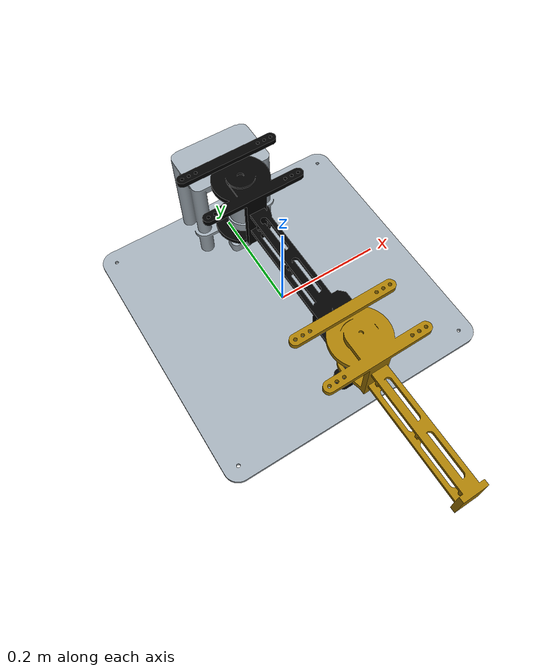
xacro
<?xml version="1.0" ?>
<robot name="SDOF" xmlns:xacro="http://ros.org/wiki/xacro">
 <xacro:include filename="$(find robot2_description)/urdf/robot2_2.xacro" />
	 <link name="world">
	 </link>

	 <joint name="bottom_joint" type="fixed">
	     <origin xyz="0 0 0" rpy="0 0 0" />
	    <parent link="world"/>
	    <child link="base"/>
	  </joint>

   	<gazebo reference="base_link">
    		<material>Gazebo/Black</material>
  	</gazebo>

	<link name="base">
	<visual>
	<origin xyz="0 0 0" rpy="0 -0 0" />
	<geometry>
	<mesh filename="package://robot2_description/meshes/base_visual.stl"/>
	</geometry>
	<material name="base_material">
	<color rgba="0.62352941176470588758 0.66666666666666662966 0.70196078431372543882 1.0"/>
	</material>
	</visual>
	<collision>
	<origin xyz="0 0 0" rpy="0 -0 0" />
	<geometry>
	<mesh filename="package://robot2_description/meshes/base_collision.stl"/>
	</geometry>
	</collision>
	<inertial>
	<origin xyz="-8.5021145016461741051e-05 0.058778785998037819116 0.039600060500422355758" rpy="0 0 0"/>
	<mass value="7.2066381775698191703" />
	<inertia ixx="0.1848510767894367135" ixy="4.5691022906607363266e-05"  ixz="-4.0746026562791975412e-06" iyy="0.1343932608549686103" iyz="-0.031252351034649690498" izz="0.26718670184450998839" />
	</inertial>
	</link>

	<link name="arm_link1">
	<visual>
	<origin xyz="0 0 0" rpy="0 -0 0" />
	<geometry>
	<mesh filename="package://robot2_description/meshes/arm_link1_visual.stl"/>
	</geometry>
	<material name="arm_link1_material">
	<color rgba="0 0 0 1.0"/>
	</material>
	</visual>
	<collision>
	<origin xyz="0 0 0" rpy="0 -0 0" />
	<geometry>
	<mesh filename="package://robot2_description/meshes/arm_link1_collision.stl"/>
	</geometry>
	</collision>
	<inertial>
	<origin xyz="-0.00045109081390297465879 0.156201263484157582 -0.061677112247344179075" rpy="0 0 0"/>
	<mass value="1.4999999999999995559" />
	<inertia ixx="0.038537421102185387412" ixy="0.00012646598414354587531"  ixz="5.8850036257577947895e-05" iyy="0.0041886319586759658204" iyz="-0.0051423976908458804425" izz="0.036047505575906427233" />
	</inertial>
	</link>

	<link name="arm_link2">
	<visual>
	<origin xyz="0 0 0" rpy="0 -0 0" />
	<geometry>//mrm_description/meshes/
	<mesh filename="package://robot2_description/meshes/arm_link2_visual.stl"/>
	</geometry>
	<material name="arm_link2_material">
	<color rgba="0.65098039215686276382 0.48627450980392161739 0.019607843137254901689 1.0"/>
	</material>
	</visual>
	<collision>
	<origin xyz="0 0 0" rpy="0 -0 0" />
	<geometry>
	<mesh filename="package://robot2_description/meshes/arm_link2_collision.stl"/>
	</geometry>
	</collision>
	<inertial>
	<origin xyz="-1.4364225730974966689e-16 0.058911397470120141495 -0.062719477942803858461" rpy="0 0 0"/>
	<mass value="0.87300000000000099742" />
	<inertia ixx="0.0089993884421236645943" ixy="6.8925176177649059502e-19"  ixz="6.7665144158966557959e-19" iyy="0.0016902567305589091644" iyz="-0.0011284435031555686661" izz="0.0086581277243874769228" />
	</inertial>
	</link>

	<xacro:joint_revolute_z joint_name="arm_joint1" parent_link ="base"
			child_link ="arm_link1">
	 	<origin xyz="0 0.13334999999999996856 0.089400000000000007239" rpy="3.141592653589793116 -0 0.0093385757735447421507"/>
	</xacro:joint_revolute_z>

	<xacro:joint_revolute_z joint_name="arm_joint2" parent_link ="arm_link1"
			child_link ="arm_link2">
	 	<origin xyz="2.5587171270657904643e-17 0.34300000000000002709 -0.014600000000000001865" rpy="0 -0 -8.0823828788377960904e-19"/>
	</xacro:joint_revolute_z>

	<xacro:transmission joint_name="arm_joint1">
		</xacro:transmission>
	<xacro:transmission joint_name="arm_joint2">
		</xacro:transmission>
	<gazebo>
    <plugin name="gazebo_ros_control" filename="libgazebo_ros_control.so">
          <robotNamespace>/SDOF</robotNamespace>
     <robotSimType>gazebo_ros_control/DefaultRobotHWSim</robotSimType>
    </plugin>
    </gazebo>

</robot>

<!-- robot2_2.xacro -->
<robot xmlns:xacro="http://www.ros.org/wiki/xacro" >

	 <!-- Include materials -->

     <xacro:property name="deg_to_rad" value="0.01745329251994329577"/>

  <!-- Constants -->
  <xacro:property name="M_SCALE_CM" value="0.01"/>
  <xacro:property name="M_PI" value="3.14159"/>

  <!-- Base properties -->
  <xacro:property name="base_height" value="0.1" />
  <xacro:property name="base_width" value="0.1" />

  <!-- Axis_2 Fixed Angles-->
  <xacro:property name="axis_2_height" value="0.343" />
  <xacro:property name="axis_2_radius" value="${0.01}" />

  <!-- Axis_3 Shoulder_Rotation -->
  <xacro:property name="axis_3_height" value="${0.267}" />

  <!-- Axis_4_Forearm_rotation-->
  <xacro:property name="axis_4_height" value="${1.5}" />

  <!-- Axis_5 Wrist rotation-->
  <xacro:property name="axis_5_height" value="${1.5}" />

  <xacro:macro name="inertial_box" params="mass x y z *origin">
        <inertial>
            <xacro:insert_block name="origin"/>
            <mass value="${mass}" />
            <inertia ixx="${(1/12) * mass * (y*y+z*z)}" ixy="0.0" ixz="0.0"
                    iyy="${(1/12) * mass * (x*x+z*z)}" iyz="0.0"
                    izz="${(1/12) * mass * (x*x+y*y)}" />
        </inertial>
    </xacro:macro>

    <xacro:macro name="inertial_cylinder" params="mass length radius *origin">
        <inertial>
            <xacro:insert_block name="origin"/>
            <mass value="${mass}" />
            <inertia ixx="${(1/12)*mass*(3*radius*radius+length*length)}" 				ixy="0.0" ixz="0.0"
                    iyy="${(1/12)*mass*(3*radius*radius+length*length)}" 				iyz="0.0"
                    izz="${(1/12)*mass*(radius*radius)}" />
        </inertial>
    </xacro:macro>

     <xacro:macro name="inertial_sphere" params="mass radius *origin">
        <inertial>
            <xacro:insert_block name="origin"/>
            <mass value="${mass}" />
            <inertia ixx="${(2/5) * mass * (radius*radius)}" ixy="0.0" ixz="0.0"
                    iyy="${(2/5) * mass * (radius*radius)}" iyz="0.0"
                    izz="${(2/5) * mass * (radius*radius)}" />
        </inertial>
    </xacro:macro>

<!-- Max effort 2 not wokring check  -->
  <xacro:property name="max_rads" value="10.157816"/>
  <xacro:property name="max_effort_2" value="17"/>

   <xacro:macro name="joint_revolute_z" params="joint_name parent_link child_link *origin">
        <joint name ="${joint_name}" type="revolute">
        <axis xyz="0 0 1" />
        <limit effort="15" velocity="${max_rads}" lower="-1.57" 					upper="1.57"/>
        <parent link ="${parent_link}"/>
    	<child link ="${child_link}"/>
        <xacro:insert_block name="origin"/>
  	</joint>
   </xacro:macro>

   <xacro:macro name="joint_revolute_y" params="joint_name parent_link child_link  *origin">
        <joint name = "${joint_name}" type= "revolute">
        <axis xyz="0 1 0" />
        <dynamics damping ="1" friction="2"/>
        <limit effort="50" velocity="${max_rads}" lower="${-150*deg_to_rad}" 				upper="${150*deg_to_rad}"/>
        <parent link="${parent_link}"/>
    	<child link="${child_link}"/>
            <xacro:insert_block name="origin"/>
    </joint>
    </xacro:macro>

     <xacro:macro name="cylinder_visual_collision_white" params="radius length  				*origin">
       <visual>
             <xacro:insert_block name="origin"/>
            <geometry>
                <cylinder radius="${radius}" length="${length}"/>
            </geometry>
            <material name="White"/>
        </visual>
        <collision>
             <xacro:insert_block name="origin"/>
            <geometry>
                <cylinder radius="${radius}" length="${length}"/>
            </geometry>
        </collision>
    </xacro:macro>

      <xacro:macro name="cylinder_visual_collision_red" params="radius length  				*origin">
       <visual>
             <xacro:insert_block name="origin"/>
            <geometry>
                <cylinder radius="${radius}" length="${length}"/>
            </geometry>
            <material name="Red"/>
        </visual>
        <collision>
             <xacro:insert_block name="origin"/>
            <geometry>
                <cylinder radius="${radius}" length="${length}"/>
            </geometry>
        </collision>
    </xacro:macro>
    <xacro:macro name="transmission" params= "joint_name">
     <transmission name="trans_${joint_name}">
  		<type>transmission_interface/SimpleTransmission</type>
     		<joint name="${joint_name}">
        		<hardwareInterface>hardware_interface/EffortJointInterface</hardwareInterface>
      		</joint>
      		<actuator name="motor_${joint_name}">
        		<hardwareInterface>hardware_interface/EffortJointInterface</hardwareInterface>
        		<mechanicalReduction>1</mechanicalReduction>
      		</actuator>
    	</transmission>
   </xacro:macro>

 </robot>
